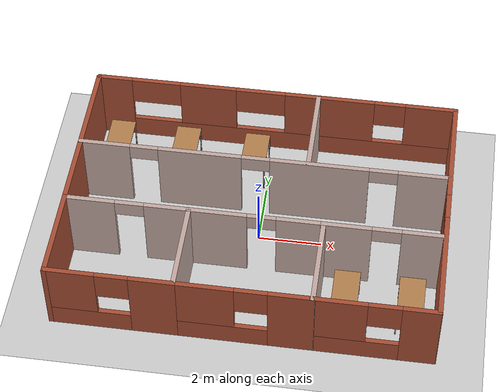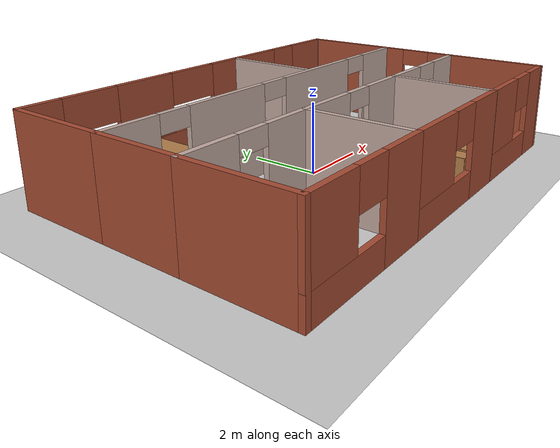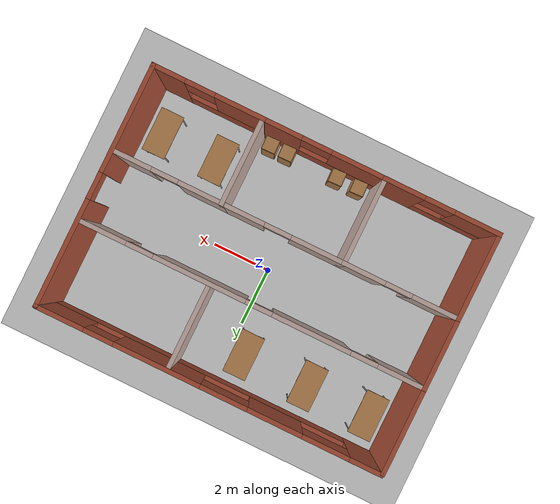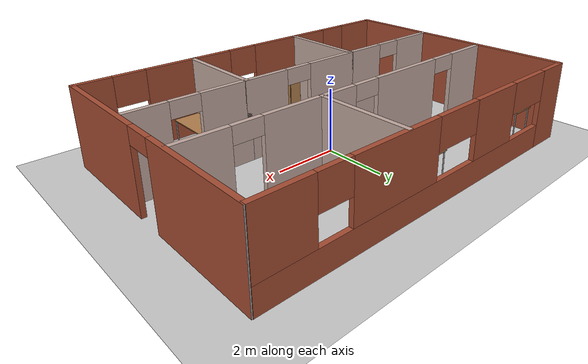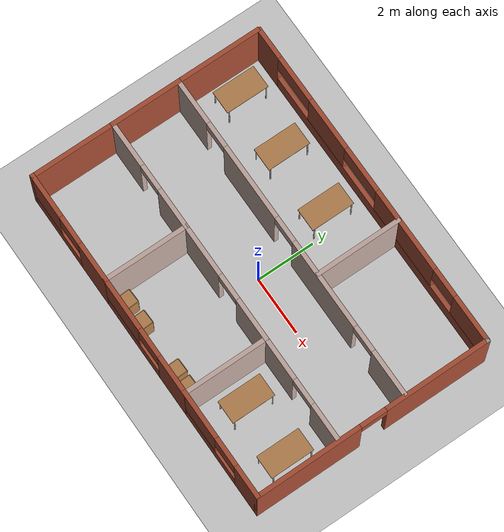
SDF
<sdf version="1.6">
 <world name="default">
  <plugin name="libhello_plugin" filename="libhello_plugin.so"/>
  <light name="sun" type="directional">
   <pose>0 0 10 0 -0 0</pose>
   <diffuse>0.8 0.8 0.8 1</diffuse>
   <specular>0.2 0.2 0.2 1</specular>
   <attenuation>
    <range>1000</range>
    <constant>0.9</constant>
    <linear>0.01</linear>
    <quadratic>0.001</quadratic>
   </attenuation>
   <direction>-0.5 0.1 -0.9</direction>
  </light>
  <model name="ground_plane">
   <static>1</static>
   <link name="link">
    <collision name="collision">
     <geometry><plane><normal>0 0 1</normal><size>100 100</size></plane></geometry>
     <surface><friction><ode><mu>100</mu><mu2>50</mu2></ode></friction></surface>
    </collision>
    <visual name="visual">
     <cast_shadows>0</cast_shadows>
     <geometry><plane><normal>0 0 1</normal><size>100 100</size></plane></geometry>
     <material>
      <script><uri>file://media/materials/scripts/gazebo.material</uri><name>Gazebo/Grey</name></script>
     </material>
    </visual>
   </link>
  </model>
  <gravity>0 0 -9.8</gravity>
  <magnetic_field>6e-06 2.3e-05 -4.2e-05</magnetic_field>
  <atmosphere type="adiabatic"/>
  <physics name="default_physics" default="0" type="ode">
   <max_step_size>0.001</max_step_size>
   <real_time_factor>1</real_time_factor>
   <real_time_update_rate>1000</real_time_update_rate>
  </physics>
  <scene><ambient>0.4 0.4 0.4 1</ambient><background>0.7 0.7 0.7 1</background><shadows>1</shadows></scene>
  <spherical_coordinates>
   <surface_model>EARTH_WGS84</surface_model>
   <latitude_deg>0</latitude_deg>
   <longitude_deg>0</longitude_deg>
   <elevation>0</elevation>
   <heading_deg>0</heading_deg>
  </spherical_coordinates>
  <model name="building1">
   <link name="Wall_0">
    <pose>5.83622 -0.00604 0 0 0 -1.5708</pose>
    <visual name="Wall_0_Visual_0">
     <pose>-2.28969 0 1.25 0 -0 0</pose>
     <geometry><box><size>3.67061 0.15 2.5</size></box></geometry>
     <material>
      <script><uri>file://media/materials/scripts/gazebo.material</uri><name>Gazebo/Bricks</name></script>
      <ambient>1 1 1 1</ambient>
     </material>
     <meta><layer>0</layer></meta>
    </visual>
    <collision name="Wall_0_Collision_0">
     <geometry><box><size>3.67061 0.15 2.5</size></box></geometry>
     <pose>-2.28969 0 1.25 0 -0 0</pose>
    </collision>
    <visual name="Wall_0_Visual_1">
     <pose>2.28531 0 1.25 0 -0 0</pose>
     <geometry><box><size>3.67939 0.15 2.5</size></box></geometry>
     <material>
      <script><uri>file://media/materials/scripts/gazebo.material</uri><name>Gazebo/Bricks</name></script>
      <ambient>1 1 1 1</ambient>
     </material>
     <meta><layer>0</layer></meta>
    </visual>
    <collision name="Wall_0_Collision_1">
     <geometry><box><size>3.67939 0.15 2.5</size></box></geometry>
     <pose>2.28531 0 1.25 0 -0 0</pose>
    </collision>
    <visual name="Wall_0_Visual_2">
     <pose>-0.004386 0 2.25 0 -0 0</pose>
     <geometry><box><size>0.9 0.15 0.5</size></box></geometry>
     <material>
      <script><uri>file://media/materials/scripts/gazebo.material</uri><name>Gazebo/Bricks</name></script>
      <ambient>1 1 1 1</ambient>
     </material>
     <meta><layer>0</layer></meta>
    </visual>
    <collision name="Wall_0_Collision_2">
     <geometry><box><size>0.9 0.15 0.5</size></box></geometry>
     <pose>-0.004386 0 2.25 0 -0 0</pose>
    </collision>
   </link>
   <link name="Wall_11">
    <pose>-3.91122 -4.05604 0 0 -0 3.14159</pose>
    <visual name="Wall_11_Visual_0">
     <pose>-1.29336 0 1.25 0 -0 0</pose>
     <geometry><box><size>1.41328 0.15 2.5</size></box></geometry>
     <material>
      <script><uri>file://media/materials/scripts/gazebo.material</uri><name>Gazebo/Bricks</name></script>
      <ambient>1 1 1 1</ambient>
     </material>
     <meta><layer>0</layer></meta>
    </visual>
    <collision name="Wall_11_Collision_0">
     <geometry><box><size>1.41328 0.15 2.5</size></box></geometry>
     <pose>-1.29336 0 1.25 0 -0 0</pose>
    </collision>
    <visual name="Wall_11_Visual_1">
     <pose>0.706639 0 0.375 0 -0 0</pose>
     <geometry><box><size>2.58672 0.15 0.75</size></box></geometry>
     <material>
      <script><uri>file://media/materials/scripts/gazebo.material</uri><name>Gazebo/Bricks</name></script>
      <ambient>1 1 1 1</ambient>
     </material>
     <meta><layer>0</layer></meta>
    </visual>
    <collision name="Wall_11_Collision_1">
     <geometry><box><size>2.58672 0.15 0.75</size></box></geometry>
     <pose>0.706639 0 0.375 0 -0 0</pose>
    </collision>
    <visual name="Wall_11_Visual_2">
     <pose>1.20664 0 1.625 0 -0 0</pose>
     <geometry><box><size>1.58672 0.15 1.75</size></box></geometry>
     <material>
      <script><uri>file://media/materials/scripts/gazebo.material</uri><name>Gazebo/Bricks</name></script>
      <ambient>1 1 1 1</ambient>
     </material>
     <meta><layer>0</layer></meta>
    </visual>
    <collision name="Wall_11_Collision_2">
     <geometry><box><size>1.58672 0.15 1.75</size></box></geometry>
     <pose>1.20664 0 1.625 0 -0 0</pose>
    </collision>
    <visual name="Wall_11_Visual_3">
     <pose>-0.086722 0 2.025 0 -0 0</pose>
     <geometry><box><size>1 0.15 0.95</size></box></geometry>
     <material>
      <script><uri>file://media/materials/scripts/gazebo.material</uri><name>Gazebo/Bricks</name></script>
      <ambient>1 1 1 1</ambient>
     </material>
     <meta><layer>0</layer></meta>
    </visual>
    <collision name="Wall_11_Collision_3">
     <geometry><box><size>1 0.15 0.95</size></box></geometry>
     <pose>-0.086722 0 2.025 0 -0 0</pose>
    </collision>
   </link>
   <link name="Wall_12">
    <collision name="Wall_12_Collision">
     <geometry><box><size>3 0.15 2.5</size></box></geometry>
     <pose>0 0 1.25 0 -0 0</pose>
    </collision>
    <visual name="Wall_12_Visual">
     <pose>0 0 1.25 0 -0 0</pose>
     <geometry><box><size>3 0.15 2.5</size></box></geometry>
     <material>
      <script><uri>file://media/materials/scripts/gazebo.material</uri><name>Gazebo/Bricks</name></script>
      <ambient>1 1 1 1</ambient>
     </material>
     <meta><layer>0</layer></meta>
    </visual>
    <pose>-5.83622 -2.63104 0 0 -0 1.5708</pose>
   </link>
   <link name="Wall_13">
    <pose>-3.91122 -1.20604 0 0 -0 0</pose>
    <visual name="Wall_13_Visual_0">
     <pose>-1.18164 0 1.25 0 -0 0</pose>
     <geometry><box><size>1.63672 0.15 2.5</size></box></geometry>
     <material>
      <script><uri>file://media/materials/scripts/gazebo.material</uri><name>Gazebo/Grey</name></script>
      <ambient>0.760784 0.662745 0.627451 1</ambient>
     </material>
     <meta><layer>0</layer></meta>
    </visual>
    <collision name="Wall_13_Collision_0">
     <geometry><box><size>1.63672 0.15 2.5</size></box></geometry>
     <pose>-1.18164 0 1.25 0 -0 0</pose>
    </collision>
    <visual name="Wall_13_Visual_1">
     <pose>1.26836 0 1.25 0 -0 0</pose>
     <geometry><box><size>1.46328 0.15 2.5</size></box></geometry>
     <material>
      <script><uri>file://media/materials/scripts/gazebo.material</uri><name>Gazebo/Grey</name></script>
      <ambient>0.760784 0.662745 0.627451 1</ambient>
     </material>
     <meta><layer>0</layer></meta>
    </visual>
    <collision name="Wall_13_Collision_1">
     <geometry><box><size>1.46328 0.15 2.5</size></box></geometry>
     <pose>1.26836 0 1.25 0 -0 0</pose>
    </collision>
    <visual name="Wall_13_Visual_2">
     <pose>0.086722 0 2.25 0 -0 0</pose>
     <geometry><box><size>0.9 0.15 0.5</size></box></geometry>
     <material>
      <script><uri>file://media/materials/scripts/gazebo.material</uri><name>Gazebo/Grey</name></script>
      <ambient>0.760784 0.662745 0.627451 1</ambient>
     </material>
     <meta><layer>0</layer></meta>
    </visual>
    <collision name="Wall_13_Collision_2">
     <geometry><box><size>0.9 0.15 0.5</size></box></geometry>
     <pose>0.086722 0 2.25 0 -0 0</pose>
    </collision>
   </link>
   <link name="Wall_15">
    <collision name="Wall_15_Collision">
     <geometry><box><size>2.5 0.15 2.5</size></box></geometry>
     <pose>0 0 1.25 0 -0 0</pose>
    </collision>
    <visual name="Wall_15_Visual">
     <pose>0 0 1.25 0 -0 0</pose>
     <geometry><box><size>2.5 0.15 2.5</size></box></geometry>
     <material>
      <script><uri>file://media/materials/scripts/gazebo.material</uri><name>Gazebo/Bricks</name></script>
      <ambient>1 1 1 1</ambient>
     </material>
     <meta><layer>0</layer></meta>
    </visual>
    <pose>-5.83622 -0.03104 0 0 -0 1.5708</pose>
   </link>
   <link name="Wall_16">
    <pose>-0.036216 1.14396 0 0 -0 0</pose>
    <visual name="Wall_16_Visual_0">
     <pose>-5.04789 0 1.25 0 -0 0</pose>
     <geometry><box><size>1.65421 0.15 2.5</size></box></geometry>
     <material>
      <script><uri>file://media/materials/scripts/gazebo.material</uri><name>Gazebo/Grey</name></script>
      <ambient>0.760784 0.662745 0.627451 1</ambient>
     </material>
     <meta><layer>0</layer></meta>
    </visual>
    <collision name="Wall_16_Collision_0">
     <geometry><box><size>1.65421 0.15 2.5</size></box></geometry>
     <pose>-5.04789 0 1.25 0 -0 0</pose>
    </collision>
    <visual name="Wall_16_Visual_1">
     <pose>-1.99555 0 1.25 0 -0 0</pose>
     <geometry><box><size>2.65048 0.15 2.5</size></box></geometry>
     <material>
      <script><uri>file://media/materials/scripts/gazebo.material</uri><name>Gazebo/Grey</name></script>
      <ambient>0.760784 0.662745 0.627451 1</ambient>
     </material>
     <meta><layer>0</layer></meta>
    </visual>
    <collision name="Wall_16_Collision_1">
     <geometry><box><size>2.65048 0.15 2.5</size></box></geometry>
     <pose>-1.99555 0 1.25 0 -0 0</pose>
    </collision>
    <visual name="Wall_16_Visual_2">
     <pose>1.79105 0 1.25 0 -0 0</pose>
     <geometry><box><size>3.12271 0.15 2.5</size></box></geometry>
     <material>
      <script><uri>file://media/materials/scripts/gazebo.material</uri><name>Gazebo/Grey</name></script>
      <ambient>0.760784 0.662745 0.627451 1</ambient>
     </material>
     <meta><layer>0</layer></meta>
    </visual>
    <collision name="Wall_16_Collision_2">
     <geometry><box><size>3.12271 0.15 2.5</size></box></geometry>
     <pose>1.79105 0 1.25 0 -0 0</pose>
    </collision>
    <visual name="Wall_16_Visual_3">
     <pose>5.0637 0 1.25 0 -0 0</pose>
     <geometry><box><size>1.62259 0.15 2.5</size></box></geometry>
     <material>
      <script><uri>file://media/materials/scripts/gazebo.material</uri><name>Gazebo/Grey</name></script>
      <ambient>0.760784 0.662745 0.627451 1</ambient>
     </material>
     <meta><layer>0</layer></meta>
    </visual>
    <collision name="Wall_16_Collision_3">
     <geometry><box><size>1.62259 0.15 2.5</size></box></geometry>
     <pose>5.0637 0 1.25 0 -0 0</pose>
    </collision>
    <visual name="Wall_16_Visual_4">
     <pose>-3.77079 0 2.25 0 -0 0</pose>
     <geometry><box><size>0.9 0.15 0.5</size></box></geometry>
     <material>
      <script><uri>file://media/materials/scripts/gazebo.material</uri><name>Gazebo/Grey</name></script>
      <ambient>0.760784 0.662745 0.627451 1</ambient>
     </material>
     <meta><layer>0</layer></meta>
    </visual>
    <collision name="Wall_16_Collision_4">
     <geometry><box><size>0.9 0.15 0.5</size></box></geometry>
     <pose>-3.77079 0 2.25 0 -0 0</pose>
    </collision>
    <visual name="Wall_16_Visual_5">
     <pose>-0.220305 0 2.25 0 -0 0</pose>
     <geometry><box><size>0.9 0.15 0.5</size></box></geometry>
     <material>
      <script><uri>file://media/materials/scripts/gazebo.material</uri><name>Gazebo/Grey</name></script>
      <ambient>0.760784 0.662745 0.627451 1</ambient>
     </material>
     <meta><layer>0</layer></meta>
    </visual>
    <collision name="Wall_16_Collision_5">
     <geometry><box><size>0.9 0.15 0.5</size></box></geometry>
     <pose>-0.220305 0 2.25 0 -0 0</pose>
    </collision>
    <visual name="Wall_16_Visual_6">
     <pose>3.80241 0 2.25 0 -0 0</pose>
     <geometry><box><size>0.9 0.15 0.5</size></box></geometry>
     <material>
      <script><uri>file://media/materials/scripts/gazebo.material</uri><name>Gazebo/Grey</name></script>
      <ambient>0.760784 0.662745 0.627451 1</ambient>
     </material>
     <meta><layer>0</layer></meta>
    </visual>
    <collision name="Wall_16_Collision_6">
     <geometry><box><size>0.9 0.15 0.5</size></box></geometry>
     <pose>3.80241 0 2.25 0 -0 0</pose>
    </collision>
   </link>
   <link name="Wall_22">
    <collision name="Wall_22_Collision">
     <geometry><box><size>3 0.15 2.5</size></box></geometry>
     <pose>0 0 1.25 0 -0 0</pose>
    </collision>
    <visual name="Wall_22_Visual">
     <pose>0 0 1.25 0 -0 0</pose>
     <geometry><box><size>3 0.15 2.5</size></box></geometry>
     <material>
      <script><uri>file://media/materials/scripts/gazebo.material</uri><name>Gazebo/Bricks</name></script>
      <ambient>1 1 1 1</ambient>
     </material>
     <meta><layer>0</layer></meta>
    </visual>
    <pose>-5.83622 2.56896 0 0 -0 1.5708</pose>
   </link>
   <link name="Wall_24">
    <collision name="Wall_24_Collision">
     <geometry><box><size>0.15 0.15 2.5</size></box></geometry>
     <pose>0 0 1.25 0 -0 0</pose>
    </collision>
    <visual name="Wall_24_Visual">
     <pose>0 0 1.25 0 -0 0</pose>
     <geometry><box><size>0.15 0.15 2.5</size></box></geometry>
     <material>
      <script><uri>file://media/materials/scripts/gazebo.material</uri><name>Gazebo/Grey</name></script>
      <ambient>1 1 1 1</ambient>
     </material>
     <meta><layer>0</layer></meta>
    </visual>
    <pose>5.83622 4.04396 0 0 -0 0</pose>
   </link>
   <link name="Wall_28">
    <pose>-0.000871 4.05604 0 0 -0 0</pose>
    <visual name="Wall_28_Visual_0">
     <pose>-5.30178 0 1.25 0 -0 0</pose>
     <geometry><box><size>1.14644 0.15 2.5</size></box></geometry>
     <material>
      <script><uri>file://media/materials/scripts/gazebo.material</uri><name>Gazebo/Bricks</name></script>
      <ambient>1 1 1 1</ambient>
     </material>
     <meta><layer>0</layer></meta>
    </visual>
    <collision name="Wall_28_Collision_0">
     <geometry><box><size>1.14644 0.15 2.5</size></box></geometry>
     <pose>-5.30178 0 1.25 0 -0 0</pose>
    </collision>
    <visual name="Wall_28_Visual_1">
     <pose>0.573218 0 0.375 0 -0 0</pose>
     <geometry><box><size>10.6036 0.15 0.75</size></box></geometry>
     <material>
      <script><uri>file://media/materials/scripts/gazebo.material</uri><name>Gazebo/Bricks</name></script>
      <ambient>1 1 1 1</ambient>
     </material>
     <meta><layer>0</layer></meta>
    </visual>
    <collision name="Wall_28_Collision_1">
     <geometry><box><size>10.6036 0.15 0.75</size></box></geometry>
     <pose>0.573218 0 0.375 0 -0 0</pose>
    </collision>
    <visual name="Wall_28_Visual_2">
     <pose>-2.20579 0 1.625 0 -0 0</pose>
     <geometry><box><size>1.84554 0.15 1.75</size></box></geometry>
     <material>
      <script><uri>file://media/materials/scripts/gazebo.material</uri><name>Gazebo/Bricks</name></script>
      <ambient>1 1 1 1</ambient>
     </material>
     <meta><layer>0</layer></meta>
    </visual>
    <collision name="Wall_28_Collision_2">
     <geometry><box><size>1.84554 0.15 1.75</size></box></geometry>
     <pose>-2.20579 0 1.625 0 -0 0</pose>
    </collision>
    <visual name="Wall_28_Visual_3">
     <pose>1.77453 0 1.625 0 -0 0</pose>
     <geometry><box><size>2.91511 0.15 1.75</size></box></geometry>
     <material>
      <script><uri>file://media/materials/scripts/gazebo.material</uri><name>Gazebo/Bricks</name></script>
      <ambient>1 1 1 1</ambient>
     </material>
     <meta><layer>0</layer></meta>
    </visual>
    <collision name="Wall_28_Collision_3">
     <geometry><box><size>2.91511 0.15 1.75</size></box></geometry>
     <pose>1.77453 0 1.625 0 -0 0</pose>
    </collision>
    <visual name="Wall_28_Visual_4">
     <pose>5.05354 0 1.625 0 -0 0</pose>
     <geometry><box><size>1.64292 0.15 1.75</size></box></geometry>
     <material>
      <script><uri>file://media/materials/scripts/gazebo.material</uri><name>Gazebo/Bricks</name></script>
      <ambient>1 1 1 1</ambient>
     </material>
     <meta><layer>0</layer></meta>
    </visual>
    <collision name="Wall_28_Collision_4">
     <geometry><box><size>1.64292 0.15 1.75</size></box></geometry>
     <pose>5.05354 0 1.625 0 -0 0</pose>
    </collision>
    <visual name="Wall_28_Visual_5">
     <pose>-3.92856 0 2.025 0 -0 0</pose>
     <geometry><box><size>1.6 0.15 0.95</size></box></geometry>
     <material>
      <script><uri>file://media/materials/scripts/gazebo.material</uri><name>Gazebo/Bricks</name></script>
      <ambient>1 1 1 1</ambient>
     </material>
     <meta><layer>0</layer></meta>
    </visual>
    <collision name="Wall_28_Collision_5">
     <geometry><box><size>1.6 0.15 0.95</size></box></geometry>
     <pose>-3.92856 0 2.025 0 -0 0</pose>
    </collision>
    <visual name="Wall_28_Visual_6">
     <pose>-0.483021 0 2.025 0 -0 0</pose>
     <geometry><box><size>1.6 0.15 0.95</size></box></geometry>
     <material>
      <script><uri>file://media/materials/scripts/gazebo.material</uri><name>Gazebo/Bricks</name></script>
      <ambient>1 1 1 1</ambient>
     </material>
     <meta><layer>0</layer></meta>
    </visual>
    <collision name="Wall_28_Collision_6">
     <geometry><box><size>1.6 0.15 0.95</size></box></geometry>
     <pose>-0.483021 0 2.025 0 -0 0</pose>
    </collision>
    <visual name="Wall_28_Visual_7">
     <pose>3.73208 0 2.025 0 -0 0</pose>
     <geometry><box><size>1 0.15 0.95</size></box></geometry>
     <material>
      <script><uri>file://media/materials/scripts/gazebo.material</uri><name>Gazebo/Bricks</name></script>
      <ambient>1 1 1 1</ambient>
     </material>
     <meta><layer>0</layer></meta>
    </visual>
    <collision name="Wall_28_Collision_7">
     <geometry><box><size>1 0.15 0.95</size></box></geometry>
     <pose>3.73208 0 2.025 0 -0 0</pose>
    </collision>
   </link>
   <link name="Wall_3">
    <pose>3.97243 -4.05604 0 0 -0 3.14159</pose>
    <visual name="Wall_3_Visual_0">
     <pose>-1.35239 0 1.25 0 -0 0</pose>
     <geometry><box><size>1.13781 0.15 2.5</size></box></geometry>
     <material>
      <script><uri>file://media/materials/scripts/gazebo.material</uri><name>Gazebo/Bricks</name></script>
      <ambient>1 1 1 1</ambient>
     </material>
     <meta><layer>0</layer></meta>
    </visual>
    <collision name="Wall_3_Collision_0">
     <geometry><box><size>1.13781 0.15 2.5</size></box></geometry>
     <pose>-1.35239 0 1.25 0 -0 0</pose>
    </collision>
    <visual name="Wall_3_Visual_1">
     <pose>0.568905 0 0.375 0 -0 0</pose>
     <geometry><box><size>2.70478 0.15 0.75</size></box></geometry>
     <material>
      <script><uri>file://media/materials/scripts/gazebo.material</uri><name>Gazebo/Bricks</name></script>
      <ambient>1 1 1 1</ambient>
     </material>
     <meta><layer>0</layer></meta>
    </visual>
    <collision name="Wall_3_Collision_1">
     <geometry><box><size>2.70478 0.15 0.75</size></box></geometry>
     <pose>0.568905 0 0.375 0 -0 0</pose>
    </collision>
    <visual name="Wall_3_Visual_2">
     <pose>1.0689 0 1.625 0 -0 0</pose>
     <geometry><box><size>1.70478 0.15 1.75</size></box></geometry>
     <material>
      <script><uri>file://media/materials/scripts/gazebo.material</uri><name>Gazebo/Bricks</name></script>
      <ambient>1 1 1 1</ambient>
     </material>
     <meta><layer>0</layer></meta>
    </visual>
    <collision name="Wall_3_Collision_2">
     <geometry><box><size>1.70478 0.15 1.75</size></box></geometry>
     <pose>1.0689 0 1.625 0 -0 0</pose>
    </collision>
    <visual name="Wall_3_Visual_3">
     <pose>-0.283484 0 2.025 0 -0 0</pose>
     <geometry><box><size>1 0.15 0.95</size></box></geometry>
     <material>
      <script><uri>file://media/materials/scripts/gazebo.material</uri><name>Gazebo/Bricks</name></script>
      <ambient>1 1 1 1</ambient>
     </material>
     <meta><layer>0</layer></meta>
    </visual>
    <collision name="Wall_3_Collision_3">
     <geometry><box><size>1 0.15 0.95</size></box></geometry>
     <pose>-0.283484 0 2.025 0 -0 0</pose>
    </collision>
   </link>
   <link name="Wall_30">
    <collision name="Wall_30_Collision">
     <geometry><box><size>3 0.15 2.5</size></box></geometry>
     <pose>0 0 1.25 0 -0 0</pose>
    </collision>
    <visual name="Wall_30_Visual">
     <pose>0 0 1.25 0 -0 0</pose>
     <geometry><box><size>3 0.15 2.5</size></box></geometry>
     <material>
      <script><uri>file://media/materials/scripts/gazebo.material</uri><name>Gazebo/Grey</name></script>
      <ambient>0.760784 0.662745 0.627451 1</ambient>
     </material>
     <meta><layer>0</layer></meta>
    </visual>
    <pose>1.40504 2.59518 0 0 -0 1.5708</pose>
   </link>
   <link name="Wall_4">
    <collision name="Wall_4_Collision">
     <geometry><box><size>3 0.15 2.5</size></box></geometry>
     <pose>0 0 1.25 0 -0 0</pose>
    </collision>
    <visual name="Wall_4_Visual">
     <pose>0 0 1.25 0 -0 0</pose>
     <geometry><box><size>3 0.15 2.5</size></box></geometry>
     <material>
      <script><uri>file://media/materials/scripts/gazebo.material</uri><name>Gazebo/Grey</name></script>
      <ambient>0.760784 0.662745 0.627451 1</ambient>
     </material>
     <meta><layer>0</layer></meta>
    </visual>
    <pose>2.14363 -2.63104 0 0 -0 1.5708</pose>
   </link>
   <link name="Wall_5">
    <pose>3.91996 -1.20604 0 0 -0 0</pose>
    <visual name="Wall_5_Visual_0">
     <pose>-1.08763 0 1.25 0 -0 0</pose>
     <geometry><box><size>1.56239 0.15 2.5</size></box></geometry>
     <material>
      <script><uri>file://media/materials/scripts/gazebo.material</uri><name>Gazebo/Grey</name></script>
      <ambient>0.760784 0.662745 0.627451 1</ambient>
     </material>
     <meta><layer>0</layer></meta>
    </visual>
    <collision name="Wall_5_Collision_0">
     <geometry><box><size>1.56239 0.15 2.5</size></box></geometry>
     <pose>-1.08763 0 1.25 0 -0 0</pose>
    </collision>
    <visual name="Wall_5_Visual_1">
     <pose>1.23119 0 1.25 0 -0 0</pose>
     <geometry><box><size>1.27526 0.15 2.5</size></box></geometry>
     <material>
      <script><uri>file://media/materials/scripts/gazebo.material</uri><name>Gazebo/Grey</name></script>
      <ambient>0.760784 0.662745 0.627451 1</ambient>
     </material>
     <meta><layer>0</layer></meta>
    </visual>
    <collision name="Wall_5_Collision_1">
     <geometry><box><size>1.27526 0.15 2.5</size></box></geometry>
     <pose>1.23119 0 1.25 0 -0 0</pose>
    </collision>
    <visual name="Wall_5_Visual_2">
     <pose>0.143564 0 2.25 0 -0 0</pose>
     <geometry><box><size>0.9 0.15 0.5</size></box></geometry>
     <material>
      <script><uri>file://media/materials/scripts/gazebo.material</uri><name>Gazebo/Grey</name></script>
      <ambient>0.760784 0.662745 0.627451 1</ambient>
     </material>
     <meta><layer>0</layer></meta>
    </visual>
    <collision name="Wall_5_Collision_2">
     <geometry><box><size>0.9 0.15 0.5</size></box></geometry>
     <pose>0.143564 0 2.25 0 -0 0</pose>
    </collision>
   </link>
   <link name="Wall_7">
    <pose>0.06996 -4.05604 0 0 -0 3.14159</pose>
    <visual name="Wall_7_Visual_0">
     <pose>-1.44093 0 1.25 0 -0 0</pose>
     <geometry><box><size>1.38048 0.15 2.5</size></box></geometry>
     <material>
      <script><uri>file://media/materials/scripts/gazebo.material</uri><name>Gazebo/Bricks</name></script>
      <ambient>1 1 1 1</ambient>
     </material>
     <meta><layer>0</layer></meta>
    </visual>
    <collision name="Wall_7_Collision_0">
     <geometry><box><size>1.38048 0.15 2.5</size></box></geometry>
     <pose>-1.44093 0 1.25 0 -0 0</pose>
    </collision>
    <visual name="Wall_7_Visual_1">
     <pose>0.690242 0 0.375 0 -0 0</pose>
     <geometry><box><size>2.88187 0.15 0.75</size></box></geometry>
     <material>
      <script><uri>file://media/materials/scripts/gazebo.material</uri><name>Gazebo/Bricks</name></script>
      <ambient>1 1 1 1</ambient>
     </material>
     <meta><layer>0</layer></meta>
    </visual>
    <collision name="Wall_7_Collision_1">
     <geometry><box><size>2.88187 0.15 0.75</size></box></geometry>
     <pose>0.690242 0 0.375 0 -0 0</pose>
    </collision>
    <visual name="Wall_7_Visual_2">
     <pose>1.19024 0 1.625 0 -0 0</pose>
     <geometry><box><size>1.88187 0.15 1.75</size></box></geometry>
     <material>
      <script><uri>file://media/materials/scripts/gazebo.material</uri><name>Gazebo/Bricks</name></script>
      <ambient>1 1 1 1</ambient>
     </material>
     <meta><layer>0</layer></meta>
    </visual>
    <collision name="Wall_7_Collision_2">
     <geometry><box><size>1.88187 0.15 1.75</size></box></geometry>
     <pose>1.19024 0 1.625 0 -0 0</pose>
    </collision>
    <visual name="Wall_7_Visual_3">
     <pose>-0.250691 0 2.025 0 -0 0</pose>
     <geometry><box><size>1 0.15 0.95</size></box></geometry>
     <material>
      <script><uri>file://media/materials/scripts/gazebo.material</uri><name>Gazebo/Bricks</name></script>
      <ambient>1 1 1 1</ambient>
     </material>
     <meta><layer>0</layer></meta>
    </visual>
    <collision name="Wall_7_Collision_3">
     <geometry><box><size>1 0.15 0.95</size></box></geometry>
     <pose>-0.250691 0 2.025 0 -0 0</pose>
    </collision>
   </link>
   <link name="Wall_8">
    <collision name="Wall_8_Collision">
     <geometry><box><size>3 0.15 2.5</size></box></geometry>
     <pose>0 0 1.25 0 -0 0</pose>
    </collision>
    <visual name="Wall_8_Visual">
     <pose>0 0 1.25 0 -0 0</pose>
     <geometry><box><size>3 0.15 2.5</size></box></geometry>
     <material>
      <script><uri>file://media/materials/scripts/gazebo.material</uri><name>Gazebo/Grey</name></script>
      <ambient>0.760784 0.662745 0.627451 1</ambient>
     </material>
     <meta><layer>0</layer></meta>
    </visual>
    <pose>-1.98622 -2.63104 0 0 -0 1.5708</pose>
   </link>
   <link name="Wall_9">
    <pose>0.06996 -1.20604 0 0 -0 0</pose>
    <visual name="Wall_9_Visual_0">
     <pose>-1.20022 0 1.25 0 -0 0</pose>
     <geometry><box><size>1.86191 0.15 2.5</size></box></geometry>
     <material>
      <script><uri>file://media/materials/scripts/gazebo.material</uri><name>Gazebo/Grey</name></script>
      <ambient>0.760784 0.662745 0.627451 1</ambient>
     </material>
     <meta><layer>0</layer></meta>
    </visual>
    <collision name="Wall_9_Collision_0">
     <geometry><box><size>1.86191 0.15 2.5</size></box></geometry>
     <pose>-1.20022 0 1.25 0 -0 0</pose>
    </collision>
    <visual name="Wall_9_Visual_1">
     <pose>1.38095 0 1.25 0 -0 0</pose>
     <geometry><box><size>1.50045 0.15 2.5</size></box></geometry>
     <material>
      <script><uri>file://media/materials/scripts/gazebo.material</uri><name>Gazebo/Grey</name></script>
      <ambient>0.760784 0.662745 0.627451 1</ambient>
     </material>
     <meta><layer>0</layer></meta>
    </visual>
    <collision name="Wall_9_Collision_1">
     <geometry><box><size>1.50045 0.15 2.5</size></box></geometry>
     <pose>1.38095 0 1.25 0 -0 0</pose>
    </collision>
    <visual name="Wall_9_Visual_2">
     <pose>0.180731 0 2.25 0 -0 0</pose>
     <geometry><box><size>0.9 0.15 0.5</size></box></geometry>
     <material>
      <script><uri>file://media/materials/scripts/gazebo.material</uri><name>Gazebo/Grey</name></script>
      <ambient>0.760784 0.662745 0.627451 1</ambient>
     </material>
     <meta><layer>0</layer></meta>
    </visual>
    <collision name="Wall_9_Collision_2">
     <geometry><box><size>0.9 0.15 0.5</size></box></geometry>
     <pose>0.180731 0 2.25 0 -0 0</pose>
    </collision>
   </link>
   <static>1</static>
  </model>
  <model name="table">
   <static>1</static>
   <link name="link">
    <collision name="surface">
     <pose>0 0 1 0 -0 0</pose>
     <geometry><box><size>1.5 0.8 0.03</size></box></geometry>
     <surface><friction><ode><mu>0.6</mu><mu2>0.6</mu2></ode></friction></surface>
    </collision>
    <visual name="visual1">
     <pose>0 0 1 0 -0 0</pose>
     <geometry><box><size>1.5 0.8 0.03</size></box></geometry>
     <material>
      <script><uri>file://media/materials/scripts/gazebo.material</uri><name>Gazebo/Wood</name></script>
     </material>
    </visual>
    <collision name="front_left_leg">
     <pose>0.68 0.38 0.5 0 -0 0</pose>
     <geometry><cylinder><radius>0.02</radius><length>1</length></cylinder></geometry>
    </collision>
    <visual name="front_left_leg">
     <pose>0.68 0.38 0.5 0 -0 0</pose>
     <geometry><cylinder><radius>0.02</radius><length>1</length></cylinder></geometry>
     <material>
      <script><uri>file://media/materials/scripts/gazebo.material</uri><name>Gazebo/Grey</name></script>
     </material>
    </visual>
    <collision name="front_right_leg">
     <pose>0.68 -0.38 0.5 0 -0 0</pose>
     <geometry><cylinder><radius>0.02</radius><length>1</length></cylinder></geometry>
    </collision>
    <visual name="front_right_leg">
     <pose>0.68 -0.38 0.5 0 -0 0</pose>
     <geometry><cylinder><radius>0.02</radius><length>1</length></cylinder></geometry>
     <material>
      <script><uri>file://media/materials/scripts/gazebo.material</uri><name>Gazebo/Grey</name></script>
     </material>
    </visual>
    <collision name="back_right_leg">
     <pose>-0.68 -0.38 0.5 0 -0 0</pose>
     <geometry><cylinder><radius>0.02</radius><length>1</length></cylinder></geometry>
    </collision>
    <visual name="back_right_leg">
     <pose>-0.68 -0.38 0.5 0 -0 0</pose>
     <geometry><cylinder><radius>0.02</radius><length>1</length></cylinder></geometry>
     <material>
      <script><uri>file://media/materials/scripts/gazebo.material</uri><name>Gazebo/Grey</name></script>
     </material>
    </visual>
    <collision name="back_left_leg">
     <pose>-0.68 0.38 0.5 0 -0 0</pose>
     <geometry><cylinder><radius>0.02</radius><length>1</length></cylinder></geometry>
    </collision>
    <visual name="back_left_leg">
     <pose>-0.68 0.38 0.5 0 -0 0</pose>
     <geometry><cylinder><radius>0.02</radius><length>1</length></cylinder></geometry>
     <material>
      <script><uri>file://media/materials/scripts/gazebo.material</uri><name>Gazebo/Grey</name></script>
     </material>
    </visual>
   </link>
   <pose>-0.5 2.8 0 0 -0 1.5707</pose>
  </model>
  <model name="table_clone">
   <static>1</static>
   <link name="link">
    <collision name="surface">
     <pose>0 0 1 0 -0 0</pose>
     <geometry><box><size>1.5 0.8 0.03</size></box></geometry>
     <surface><friction><ode><mu>0.6</mu><mu2>0.6</mu2></ode></friction></surface>
    </collision>
    <visual name="visual1">
     <pose>0 0 1 0 -0 0</pose>
     <geometry><box><size>1.5 0.8 0.03</size></box></geometry>
     <material>
      <script><uri>file://media/materials/scripts/gazebo.material</uri><name>Gazebo/Wood</name></script>
     </material>
    </visual>
    <collision name="front_left_leg">
     <pose>0.68 0.38 0.5 0 -0 0</pose>
     <geometry><cylinder><radius>0.02</radius><length>1</length></cylinder></geometry>
    </collision>
    <visual name="front_left_leg">
     <pose>0.68 0.38 0.5 0 -0 0</pose>
     <geometry><cylinder><radius>0.02</radius><length>1</length></cylinder></geometry>
     <material>
      <script><uri>file://media/materials/scripts/gazebo.material</uri><name>Gazebo/Grey</name></script>
     </material>
    </visual>
    <collision name="front_right_leg">
     <pose>0.68 -0.38 0.5 0 -0 0</pose>
     <geometry><cylinder><radius>0.02</radius><length>1</length></cylinder></geometry>
    </collision>
    <visual name="front_right_leg">
     <pose>0.68 -0.38 0.5 0 -0 0</pose>
     <geometry><cylinder><radius>0.02</radius><length>1</length></cylinder></geometry>
     <material>
      <script><uri>file://media/materials/scripts/gazebo.material</uri><name>Gazebo/Grey</name></script>
     </material>
    </visual>
    <collision name="back_right_leg">
     <pose>-0.68 -0.38 0.5 0 -0 0</pose>
     <geometry><cylinder><radius>0.02</radius><length>1</length></cylinder></geometry>
    </collision>
    <visual name="back_right_leg">
     <pose>-0.68 -0.38 0.5 0 -0 0</pose>
     <geometry><cylinder><radius>0.02</radius><length>1</length></cylinder></geometry>
     <material>
      <script><uri>file://media/materials/scripts/gazebo.material</uri><name>Gazebo/Grey</name></script>
     </material>
    </visual>
    <collision name="back_left_leg">
     <pose>-0.68 0.38 0.5 0 -0 0</pose>
     <geometry><cylinder><radius>0.02</radius><length>1</length></cylinder></geometry>
    </collision>
    <visual name="back_left_leg">
     <pose>-0.68 0.38 0.5 0 -0 0</pose>
     <geometry><cylinder><radius>0.02</radius><length>1</length></cylinder></geometry>
     <material>
      <script><uri>file://media/materials/scripts/gazebo.material</uri><name>Gazebo/Grey</name></script>
     </material>
    </visual>
   </link>
   <pose>-2.8 2.8 0 0 -0 1.5707</pose>
  </model>
  <model name="table_clone_0">
   <static>1</static>
   <link name="link">
    <collision name="surface">
     <pose>0 0 1 0 -0 0</pose>
     <geometry><box><size>1.5 0.8 0.03</size></box></geometry>
     <surface><friction><ode><mu>0.6</mu><mu2>0.6</mu2></ode></friction></surface>
    </collision>
    <visual name="visual1">
     <pose>0 0 1 0 -0 0</pose>
     <geometry><box><size>1.5 0.8 0.03</size></box></geometry>
     <material>
      <script><uri>file://media/materials/scripts/gazebo.material</uri><name>Gazebo/Wood</name></script>
     </material>
    </visual>
    <collision name="front_left_leg">
     <pose>0.68 0.38 0.5 0 -0 0</pose>
     <geometry><cylinder><radius>0.02</radius><length>1</length></cylinder></geometry>
    </collision>
    <visual name="front_left_leg">
     <pose>0.68 0.38 0.5 0 -0 0</pose>
     <geometry><cylinder><radius>0.02</radius><length>1</length></cylinder></geometry>
     <material>
      <script><uri>file://media/materials/scripts/gazebo.material</uri><name>Gazebo/Grey</name></script>
     </material>
    </visual>
    <collision name="front_right_leg">
     <pose>0.68 -0.38 0.5 0 -0 0</pose>
     <geometry><cylinder><radius>0.02</radius><length>1</length></cylinder></geometry>
    </collision>
    <visual name="front_right_leg">
     <pose>0.68 -0.38 0.5 0 -0 0</pose>
     <geometry><cylinder><radius>0.02</radius><length>1</length></cylinder></geometry>
     <material>
      <script><uri>file://media/materials/scripts/gazebo.material</uri><name>Gazebo/Grey</name></script>
     </material>
    </visual>
    <collision name="back_right_leg">
     <pose>-0.68 -0.38 0.5 0 -0 0</pose>
     <geometry><cylinder><radius>0.02</radius><length>1</length></cylinder></geometry>
    </collision>
    <visual name="back_right_leg">
     <pose>-0.68 -0.38 0.5 0 -0 0</pose>
     <geometry><cylinder><radius>0.02</radius><length>1</length></cylinder></geometry>
     <material>
      <script><uri>file://media/materials/scripts/gazebo.material</uri><name>Gazebo/Grey</name></script>
     </material>
    </visual>
    <collision name="back_left_leg">
     <pose>-0.68 0.38 0.5 0 -0 0</pose>
     <geometry><cylinder><radius>0.02</radius><length>1</length></cylinder></geometry>
    </collision>
    <visual name="back_left_leg">
     <pose>-0.68 0.38 0.5 0 -0 0</pose>
     <geometry><cylinder><radius>0.02</radius><length>1</length></cylinder></geometry>
     <material>
      <script><uri>file://media/materials/scripts/gazebo.material</uri><name>Gazebo/Grey</name></script>
     </material>
    </visual>
   </link>
   <pose>-5.00107 2.8 0 0 -0 1.5707</pose>
  </model>
  <model name="table_clone_clone">
   <static>1</static>
   <link name="link">
    <collision name="surface">
     <pose>0 0 1 0 -0 0</pose>
     <geometry><box><size>1.5 0.8 0.03</size></box></geometry>
     <surface><friction><ode><mu>0.6</mu><mu2>0.6</mu2></ode></friction></surface>
    </collision>
    <visual name="visual1">
     <pose>0 0 1 0 -0 0</pose>
     <geometry><box><size>1.5 0.8 0.03</size></box></geometry>
     <material>
      <script><uri>file://media/materials/scripts/gazebo.material</uri><name>Gazebo/Wood</name></script>
     </material>
    </visual>
    <collision name="front_left_leg">
     <pose>0.68 0.38 0.5 0 -0 0</pose>
     <geometry><cylinder><radius>0.02</radius><length>1</length></cylinder></geometry>
    </collision>
    <visual name="front_left_leg">
     <pose>0.68 0.38 0.5 0 -0 0</pose>
     <geometry><cylinder><radius>0.02</radius><length>1</length></cylinder></geometry>
     <material>
      <script><uri>file://media/materials/scripts/gazebo.material</uri><name>Gazebo/Grey</name></script>
     </material>
    </visual>
    <collision name="front_right_leg">
     <pose>0.68 -0.38 0.5 0 -0 0</pose>
     <geometry><cylinder><radius>0.02</radius><length>1</length></cylinder></geometry>
    </collision>
    <visual name="front_right_leg">
     <pose>0.68 -0.38 0.5 0 -0 0</pose>
     <geometry><cylinder><radius>0.02</radius><length>1</length></cylinder></geometry>
     <material>
      <script><uri>file://media/materials/scripts/gazebo.material</uri><name>Gazebo/Grey</name></script>
     </material>
    </visual>
    <collision name="back_right_leg">
     <pose>-0.68 -0.38 0.5 0 -0 0</pose>
     <geometry><cylinder><radius>0.02</radius><length>1</length></cylinder></geometry>
    </collision>
    <visual name="back_right_leg">
     <pose>-0.68 -0.38 0.5 0 -0 0</pose>
     <geometry><cylinder><radius>0.02</radius><length>1</length></cylinder></geometry>
     <material>
      <script><uri>file://media/materials/scripts/gazebo.material</uri><name>Gazebo/Grey</name></script>
     </material>
    </visual>
    <collision name="back_left_leg">
     <pose>-0.68 0.38 0.5 0 -0 0</pose>
     <geometry><cylinder><radius>0.02</radius><length>1</length></cylinder></geometry>
    </collision>
    <visual name="back_left_leg">
     <pose>-0.68 0.38 0.5 0 -0 0</pose>
     <geometry><cylinder><radius>0.02</radius><length>1</length></cylinder></geometry>
     <material>
      <script><uri>file://media/materials/scripts/gazebo.material</uri><name>Gazebo/Grey</name></script>
     </material>
    </visual>
   </link>
   <pose>3 -2.5 0 0 -0 1.5707</pose>
  </model>
  <model name="table_clone_clone_0">
   <static>1</static>
   <link name="link">
    <collision name="surface">
     <pose>0 0 1 0 -0 0</pose>
     <geometry><box><size>1.5 0.8 0.03</size></box></geometry>
     <surface><friction><ode><mu>0.6</mu><mu2>0.6</mu2></ode></friction></surface>
    </collision>
    <visual name="visual1">
     <pose>0 0 1 0 -0 0</pose>
     <geometry><box><size>1.5 0.8 0.03</size></box></geometry>
     <material>
      <script><uri>file://media/materials/scripts/gazebo.material</uri><name>Gazebo/Wood</name></script>
     </material>
    </visual>
    <collision name="front_left_leg">
     <pose>0.68 0.38 0.5 0 -0 0</pose>
     <geometry><cylinder><radius>0.02</radius><length>1</length></cylinder></geometry>
    </collision>
    <visual name="front_left_leg">
     <pose>0.68 0.38 0.5 0 -0 0</pose>
     <geometry><cylinder><radius>0.02</radius><length>1</length></cylinder></geometry>
     <material>
      <script><uri>file://media/materials/scripts/gazebo.material</uri><name>Gazebo/Grey</name></script>
     </material>
    </visual>
    <collision name="front_right_leg">
     <pose>0.68 -0.38 0.5 0 -0 0</pose>
     <geometry><cylinder><radius>0.02</radius><length>1</length></cylinder></geometry>
    </collision>
    <visual name="front_right_leg">
     <pose>0.68 -0.38 0.5 0 -0 0</pose>
     <geometry><cylinder><radius>0.02</radius><length>1</length></cylinder></geometry>
     <material>
      <script><uri>file://media/materials/scripts/gazebo.material</uri><name>Gazebo/Grey</name></script>
     </material>
    </visual>
    <collision name="back_right_leg">
     <pose>-0.68 -0.38 0.5 0 -0 0</pose>
     <geometry><cylinder><radius>0.02</radius><length>1</length></cylinder></geometry>
    </collision>
    <visual name="back_right_leg">
     <pose>-0.68 -0.38 0.5 0 -0 0</pose>
     <geometry><cylinder><radius>0.02</radius><length>1</length></cylinder></geometry>
     <material>
      <script><uri>file://media/materials/scripts/gazebo.material</uri><name>Gazebo/Grey</name></script>
     </material>
    </visual>
    <collision name="back_left_leg">
     <pose>-0.68 0.38 0.5 0 -0 0</pose>
     <geometry><cylinder><radius>0.02</radius><length>1</length></cylinder></geometry>
    </collision>
    <visual name="back_left_leg">
     <pose>-0.68 0.38 0.5 0 -0 0</pose>
     <geometry><cylinder><radius>0.02</radius><length>1</length></cylinder></geometry>
     <material>
      <script><uri>file://media/materials/scripts/gazebo.material</uri><name>Gazebo/Grey</name></script>
     </material>
    </visual>
   </link>
   <pose>5 -2.5 0 0 -0 1.5707</pose>
  </model>
  <model name="cabinet">
   <static>1</static>
   <link name="cabinet_bottom_plate">
    <inertial>
     <pose>0 0 -1 0 -0 0</pose>
     <inertia><ixx>2.05</ixx><ixy>0</ixy><ixz>0</ixz><iyy>2.05</iyy><iyz>0</iyz><izz>2.05</izz></inertia>
     <mass>25</mass>
    </inertial>
    <collision name="cabinet_bottom_plate_geom">
     <pose>0 0 0.01 0 -0 0</pose>
     <geometry><box><size>0.45 0.45 0.02</size></box></geometry>
    </collision>
    <visual name="cabinet_bottom_plate_geom_visual">
     <pose>0 0 0.01 0 -0 0</pose>
     <geometry><box><size>0.45 0.45 0.02</size></box></geometry>
     <material>
      <script><uri>file://media/materials/scripts/gazebo.material</uri><name>Gazebo/Wood</name></script>
     </material>
    </visual>
    <collision name="cabinet_bottom_plate_geom_cabinet_back_plate">
     <pose>0.235 0 0.51 0 -0 0</pose>
     <geometry><box><size>0.02 0.45 1.02</size></box></geometry>
    </collision>
    <visual name="cabinet_bottom_plate_geom_cabinet_back_plate_visual">
     <pose>0.235 0 0.51 0 -0 0</pose>
     <geometry><box><size>0.02 0.45 1.02</size></box></geometry>
     <material>
      <script><uri>file://media/materials/scripts/gazebo.material</uri><name>Gazebo/Wood</name></script>
     </material>
    </visual>
    <collision name="cabinet_bottom_plate_geom_cabinet_left_plate">
     <pose>0 0.235 0.51 0 -0 0</pose>
     <geometry><box><size>0.45 0.02 1.02</size></box></geometry>
    </collision>
    <visual name="cabinet_bottom_plate_geom_cabinet_left_plate_visual">
     <pose>0 0.235 0.51 0 -0 0</pose>
     <geometry><box><size>0.45 0.02 1.02</size></box></geometry>
     <material>
      <script><uri>file://media/materials/scripts/gazebo.material</uri><name>Gazebo/Wood</name></script>
     </material>
    </visual>
    <collision name="cabinet_bottom_plate_geom_cabinet_middle_plate">
     <pose>0 0 0.51 0 -0 0</pose>
     <geometry><box><size>0.45 0.45 0.02</size></box></geometry>
    </collision>
    <visual name="cabinet_bottom_plate_geom_cabinet_middle_plate_visual">
     <pose>0 0 0.51 0 -0 0</pose>
     <geometry><box><size>0.45 0.45 0.02</size></box></geometry>
     <material>
      <script><uri>file://media/materials/scripts/gazebo.material</uri><name>Gazebo/Wood</name></script>
     </material>
    </visual>
    <collision name="cabinet_bottom_plate_geom_cabinet_right_plate">
     <pose>0 -0.235 0.51 0 -0 0</pose>
     <geometry><box><size>0.45 0.02 1.02</size></box></geometry>
    </collision>
    <visual name="cabinet_bottom_plate_geom_cabinet_right_plate_visual">
     <pose>0 -0.235 0.51 0 -0 0</pose>
     <geometry><box><size>0.45 0.02 1.02</size></box></geometry>
     <material>
      <script><uri>file://media/materials/scripts/gazebo.material</uri><name>Gazebo/Wood</name></script>
     </material>
    </visual>
    <collision name="cabinet_bottom_plate_geom_cabinet_top_plate">
     <pose>0 0 1.01 0 -0 0</pose>
     <geometry><box><size>0.45 0.45 0.02</size></box></geometry>
    </collision>
    <visual name="cabinet_bottom_plate_geom_cabinet_top_plate_visual">
     <pose>0 0 1.01 0 -0 0</pose>
     <geometry><box><size>0.45 0.45 0.02</size></box></geometry>
     <material>
      <script><uri>file://media/materials/scripts/gazebo.material</uri><name>Gazebo/Wood</name></script>
     </material>
    </visual>
   </link>
   <pose>-1.47484 -3.7 0 0 -0 1.61056</pose>
  </model>
  <model name="cabinet_clone">
   <static>1</static>
   <link name="cabinet_bottom_plate">
    <inertial>
     <pose>0 0 -1 0 -0 0</pose>
     <inertia><ixx>2.05</ixx><ixy>0</ixy><ixz>0</ixz><iyy>2.05</iyy><iyz>0</iyz><izz>2.05</izz></inertia>
     <mass>25</mass>
    </inertial>
    <collision name="cabinet_bottom_plate_geom">
     <pose>0 0 0.01 0 -0 0</pose>
     <geometry><box><size>0.45 0.45 0.02</size></box></geometry>
    </collision>
    <visual name="cabinet_bottom_plate_geom_visual">
     <pose>0 0 0.01 0 -0 0</pose>
     <geometry><box><size>0.45 0.45 0.02</size></box></geometry>
     <material>
      <script><uri>file://media/materials/scripts/gazebo.material</uri><name>Gazebo/Wood</name></script>
     </material>
    </visual>
    <collision name="cabinet_bottom_plate_geom_cabinet_back_plate">
     <pose>0.235 0 0.51 0 -0 0</pose>
     <geometry><box><size>0.02 0.45 1.02</size></box></geometry>
    </collision>
    <visual name="cabinet_bottom_plate_geom_cabinet_back_plate_visual">
     <pose>0.235 0 0.51 0 -0 0</pose>
     <geometry><box><size>0.02 0.45 1.02</size></box></geometry>
     <material>
      <script><uri>file://media/materials/scripts/gazebo.material</uri><name>Gazebo/Wood</name></script>
     </material>
    </visual>
    <collision name="cabinet_bottom_plate_geom_cabinet_left_plate">
     <pose>0 0.235 0.51 0 -0 0</pose>
     <geometry><box><size>0.45 0.02 1.02</size></box></geometry>
    </collision>
    <visual name="cabinet_bottom_plate_geom_cabinet_left_plate_visual">
     <pose>0 0.235 0.51 0 -0 0</pose>
     <geometry><box><size>0.45 0.02 1.02</size></box></geometry>
     <material>
      <script><uri>file://media/materials/scripts/gazebo.material</uri><name>Gazebo/Wood</name></script>
     </material>
    </visual>
    <collision name="cabinet_bottom_plate_geom_cabinet_middle_plate">
     <pose>0 0 0.51 0 -0 0</pose>
     <geometry><box><size>0.45 0.45 0.02</size></box></geometry>
    </collision>
    <visual name="cabinet_bottom_plate_geom_cabinet_middle_plate_visual">
     <pose>0 0 0.51 0 -0 0</pose>
     <geometry><box><size>0.45 0.45 0.02</size></box></geometry>
     <material>
      <script><uri>file://media/materials/scripts/gazebo.material</uri><name>Gazebo/Wood</name></script>
     </material>
    </visual>
    <collision name="cabinet_bottom_plate_geom_cabinet_right_plate">
     <pose>0 -0.235 0.51 0 -0 0</pose>
     <geometry><box><size>0.45 0.02 1.02</size></box></geometry>
    </collision>
    <visual name="cabinet_bottom_plate_geom_cabinet_right_plate_visual">
     <pose>0 -0.235 0.51 0 -0 0</pose>
     <geometry><box><size>0.45 0.02 1.02</size></box></geometry>
     <material>
      <script><uri>file://media/materials/scripts/gazebo.material</uri><name>Gazebo/Wood</name></script>
     </material>
    </visual>
    <collision name="cabinet_bottom_plate_geom_cabinet_top_plate">
     <pose>0 0 1.01 0 -0 0</pose>
     <geometry><box><size>0.45 0.45 0.02</size></box></geometry>
    </collision>
    <visual name="cabinet_bottom_plate_geom_cabinet_top_plate_visual">
     <pose>0 0 1.01 0 -0 0</pose>
     <geometry><box><size>0.45 0.45 0.02</size></box></geometry>
     <material>
      <script><uri>file://media/materials/scripts/gazebo.material</uri><name>Gazebo/Wood</name></script>
     </material>
    </visual>
   </link>
   <pose>-0.7 -3.7 0 0 -0 1.60848</pose>
  </model>
  <model name="cabinet_clone_clone">
   <static>1</static>
   <link name="cabinet_bottom_plate">
    <inertial>
     <pose>0 0 -1 0 -0 0</pose>
     <inertia><ixx>2.05</ixx><ixy>0</ixy><ixz>0</ixz><iyy>2.05</iyy><iyz>0</iyz><izz>2.05</izz></inertia>
     <mass>25</mass>
    </inertial>
    <collision name="cabinet_bottom_plate_geom">
     <pose>0 0 0.01 0 -0 0</pose>
     <geometry><box><size>0.45 0.45 0.02</size></box></geometry>
    </collision>
    <visual name="cabinet_bottom_plate_geom_visual">
     <pose>0 0 0.01 0 -0 0</pose>
     <geometry><box><size>0.45 0.45 0.02</size></box></geometry>
     <material>
      <script><uri>file://media/materials/scripts/gazebo.material</uri><name>Gazebo/Wood</name></script>
     </material>
    </visual>
    <collision name="cabinet_bottom_plate_geom_cabinet_back_plate">
     <pose>0.235 0 0.51 0 -0 0</pose>
     <geometry><box><size>0.02 0.45 1.02</size></box></geometry>
    </collision>
    <visual name="cabinet_bottom_plate_geom_cabinet_back_plate_visual">
     <pose>0.235 0 0.51 0 -0 0</pose>
     <geometry><box><size>0.02 0.45 1.02</size></box></geometry>
     <material>
      <script><uri>file://media/materials/scripts/gazebo.material</uri><name>Gazebo/Wood</name></script>
     </material>
    </visual>
    <collision name="cabinet_bottom_plate_geom_cabinet_left_plate">
     <pose>0 0.235 0.51 0 -0 0</pose>
     <geometry><box><size>0.45 0.02 1.02</size></box></geometry>
    </collision>
    <visual name="cabinet_bottom_plate_geom_cabinet_left_plate_visual">
     <pose>0 0.235 0.51 0 -0 0</pose>
     <geometry><box><size>0.45 0.02 1.02</size></box></geometry>
     <material>
      <script><uri>file://media/materials/scripts/gazebo.material</uri><name>Gazebo/Wood</name></script>
     </material>
    </visual>
    <collision name="cabinet_bottom_plate_geom_cabinet_middle_plate">
     <pose>0 0 0.51 0 -0 0</pose>
     <geometry><box><size>0.45 0.45 0.02</size></box></geometry>
    </collision>
    <visual name="cabinet_bottom_plate_geom_cabinet_middle_plate_visual">
     <pose>0 0 0.51 0 -0 0</pose>
     <geometry><box><size>0.45 0.45 0.02</size></box></geometry>
     <material>
      <script><uri>file://media/materials/scripts/gazebo.material</uri><name>Gazebo/Wood</name></script>
     </material>
    </visual>
    <collision name="cabinet_bottom_plate_geom_cabinet_right_plate">
     <pose>0 -0.235 0.51 0 -0 0</pose>
     <geometry><box><size>0.45 0.02 1.02</size></box></geometry>
    </collision>
    <visual name="cabinet_bottom_plate_geom_cabinet_right_plate_visual">
     <pose>0 -0.235 0.51 0 -0 0</pose>
     <geometry><box><size>0.45 0.02 1.02</size></box></geometry>
     <material>
      <script><uri>file://media/materials/scripts/gazebo.material</uri><name>Gazebo/Wood</name></script>
     </material>
    </visual>
    <collision name="cabinet_bottom_plate_geom_cabinet_top_plate">
     <pose>0 0 1.01 0 -0 0</pose>
     <geometry><box><size>0.45 0.45 0.02</size></box></geometry>
    </collision>
    <visual name="cabinet_bottom_plate_geom_cabinet_top_plate_visual">
     <pose>0 0 1.01 0 -0 0</pose>
     <geometry><box><size>0.45 0.45 0.02</size></box></geometry>
     <material>
      <script><uri>file://media/materials/scripts/gazebo.material</uri><name>Gazebo/Wood</name></script>
     </material>
    </visual>
   </link>
   <pose>1.7 -3.7 0 0 -0 1.60401</pose>
  </model>
  <model name="cabinet_clone_clone_0">
   <static>1</static>
   <link name="cabinet_bottom_plate">
    <inertial>
     <pose>0 0 -1 0 -0 0</pose>
     <inertia><ixx>2.05</ixx><ixy>0</ixy><ixz>0</ixz><iyy>2.05</iyy><iyz>0</iyz><izz>2.05</izz></inertia>
     <mass>25</mass>
    </inertial>
    <collision name="cabinet_bottom_plate_geom">
     <pose>0 0 0.01 0 -0 0</pose>
     <geometry><box><size>0.45 0.45 0.02</size></box></geometry>
    </collision>
    <visual name="cabinet_bottom_plate_geom_visual">
     <pose>0 0 0.01 0 -0 0</pose>
     <geometry><box><size>0.45 0.45 0.02</size></box></geometry>
     <material>
      <script><uri>file://media/materials/scripts/gazebo.material</uri><name>Gazebo/Wood</name></script>
     </material>
    </visual>
    <collision name="cabinet_bottom_plate_geom_cabinet_back_plate">
     <pose>0.235 0 0.51 0 -0 0</pose>
     <geometry><box><size>0.02 0.45 1.02</size></box></geometry>
    </collision>
    <visual name="cabinet_bottom_plate_geom_cabinet_back_plate_visual">
     <pose>0.235 0 0.51 0 -0 0</pose>
     <geometry><box><size>0.02 0.45 1.02</size></box></geometry>
     <material>
      <script><uri>file://media/materials/scripts/gazebo.material</uri><name>Gazebo/Wood</name></script>
     </material>
    </visual>
    <collision name="cabinet_bottom_plate_geom_cabinet_left_plate">
     <pose>0 0.235 0.51 0 -0 0</pose>
     <geometry><box><size>0.45 0.02 1.02</size></box></geometry>
    </collision>
    <visual name="cabinet_bottom_plate_geom_cabinet_left_plate_visual">
     <pose>0 0.235 0.51 0 -0 0</pose>
     <geometry><box><size>0.45 0.02 1.02</size></box></geometry>
     <material>
      <script><uri>file://media/materials/scripts/gazebo.material</uri><name>Gazebo/Wood</name></script>
     </material>
    </visual>
    <collision name="cabinet_bottom_plate_geom_cabinet_middle_plate">
     <pose>0 0 0.51 0 -0 0</pose>
     <geometry><box><size>0.45 0.45 0.02</size></box></geometry>
    </collision>
    <visual name="cabinet_bottom_plate_geom_cabinet_middle_plate_visual">
     <pose>0 0 0.51 0 -0 0</pose>
     <geometry><box><size>0.45 0.45 0.02</size></box></geometry>
     <material>
      <script><uri>file://media/materials/scripts/gazebo.material</uri><name>Gazebo/Wood</name></script>
     </material>
    </visual>
    <collision name="cabinet_bottom_plate_geom_cabinet_right_plate">
     <pose>0 -0.235 0.51 0 -0 0</pose>
     <geometry><box><size>0.45 0.02 1.02</size></box></geometry>
    </collision>
    <visual name="cabinet_bottom_plate_geom_cabinet_right_plate_visual">
     <pose>0 -0.235 0.51 0 -0 0</pose>
     <geometry><box><size>0.45 0.02 1.02</size></box></geometry>
     <material>
      <script><uri>file://media/materials/scripts/gazebo.material</uri><name>Gazebo/Wood</name></script>
     </material>
    </visual>
    <collision name="cabinet_bottom_plate_geom_cabinet_top_plate">
     <pose>0 0 1.01 0 -0 0</pose>
     <geometry><box><size>0.45 0.45 0.02</size></box></geometry>
    </collision>
    <visual name="cabinet_bottom_plate_geom_cabinet_top_plate_visual">
     <pose>0 0 1.01 0 -0 0</pose>
     <geometry><box><size>0.45 0.45 0.02</size></box></geometry>
     <material>
      <script><uri>file://media/materials/scripts/gazebo.material</uri><name>Gazebo/Wood</name></script>
     </material>
    </visual>
   </link>
   <pose>1.1 -3.7 0 0 -0 1.59544</pose>
  </model>
 </world>
</sdf>
